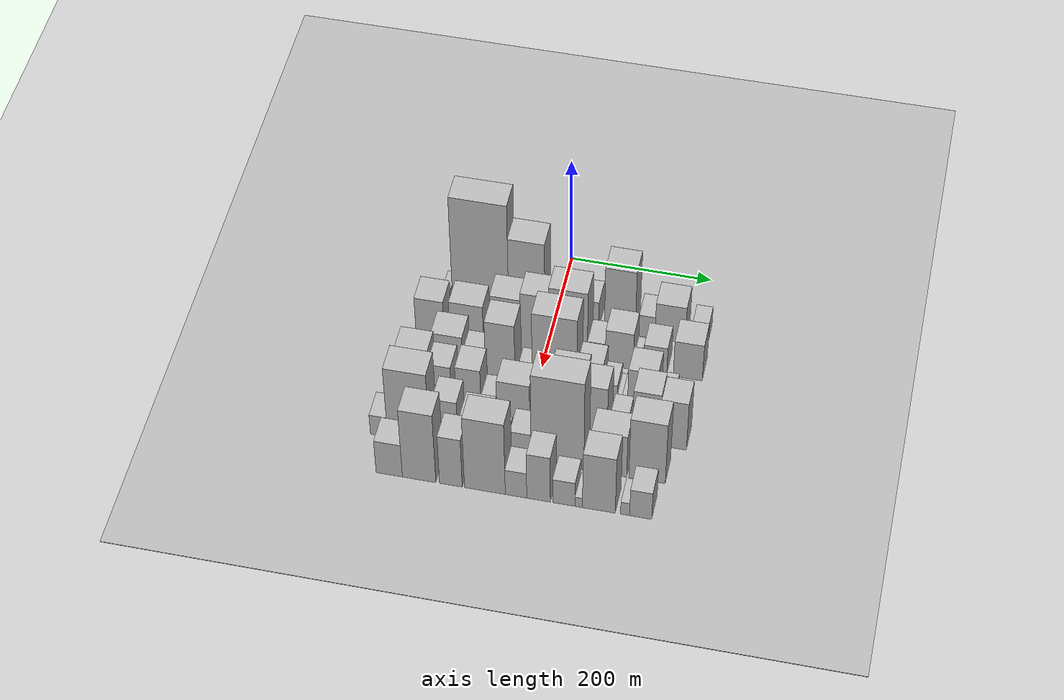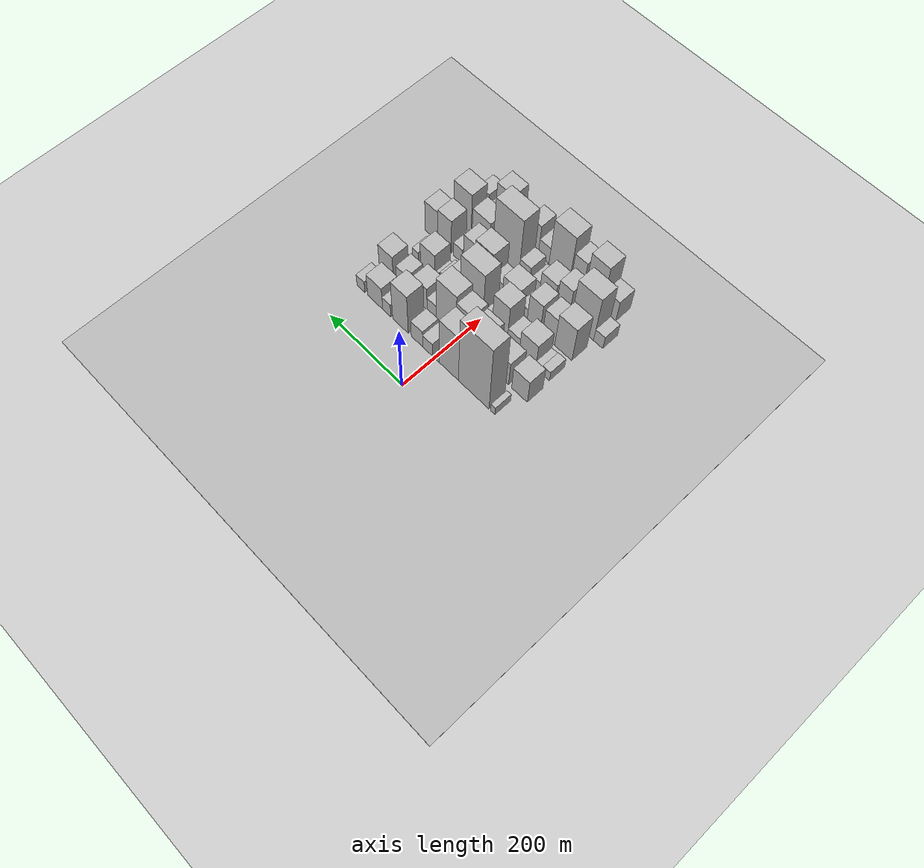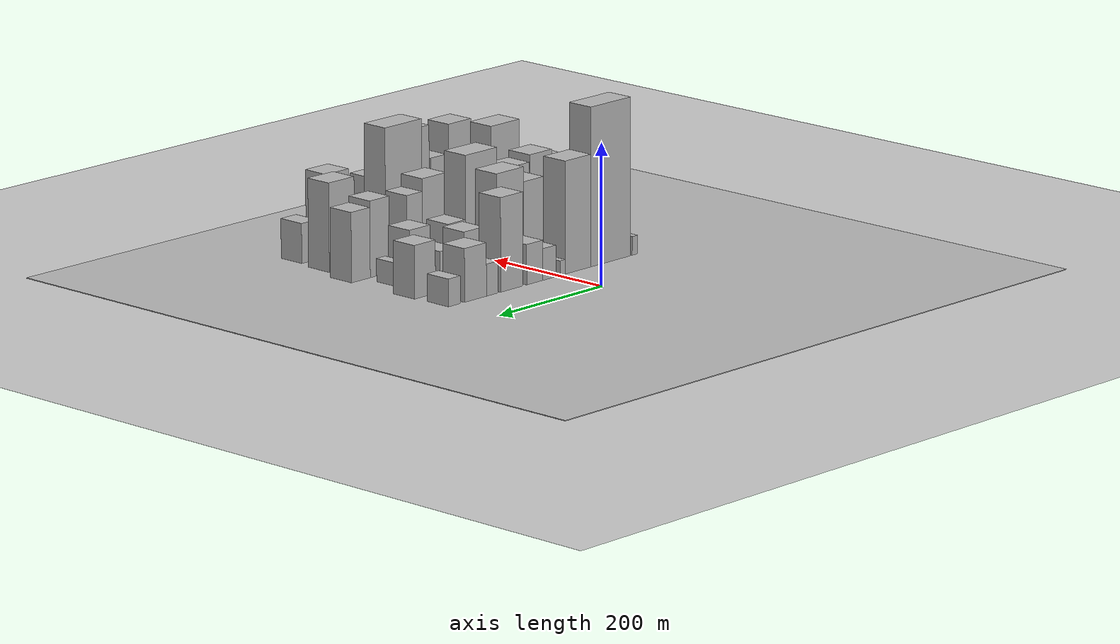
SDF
<sdf version="1.6">
 <world name="default">
  <include><name>ground_plane_1</name><uri>model://HANNAS_ground_plane</uri></include>
  <include>
   <name>ground_plane_2</name>
   <uri>model://HANNAS_ground_plane</uri>
   <pose>100 0 0  0 0 0</pose>
  </include>
  <model name="building_21">
   <static>1</static>
   <pose>100.0000 -153.6914 0 0.000000 0.000000 0.000000</pose>
   <link name="link">
    <pose>0 0 13.50 0 0 0</pose>
    <collision name="collision"><geometry><box><size>40.0000 11.4014 27.0000</size></box></geometry></collision>
    <visual name="visual">
     <cast_shadows>0</cast_shadows>
     <geometry><box><size>40.0000 11.4014 27.0000</size></box></geometry>
     <material>
      <script>
       <uri>model://HANNAS_wall/materials/scripts</uri>
       <uri>model://HANNAS_wall/materials/textures</uri>
       <name>vrc/HANNAS_wall</name>
      </script>
     </material>
    </visual>
   </link>
  </model>
  <model name="building_22">
   <static>1</static>
   <pose>100.0000 -104.1295 0 0.000000 0.000000 0.000000</pose>
   <link name="link">
    <pose>0 0 112.50 0 0 0</pose>
    <collision name="collision"><geometry><box><size>40.0000 79.7223 225.0000</size></box></geometry></collision>
    <visual name="visual">
     <cast_shadows>0</cast_shadows>
     <geometry><box><size>40.0000 79.7223 225.0000</size></box></geometry>
     <material>
      <script>
       <uri>model://HANNAS_wall/materials/scripts</uri>
       <uri>model://HANNAS_wall/materials/textures</uri>
       <name>vrc/HANNAS_wall</name>
      </script>
     </material>
    </visual>
   </link>
  </model>
  <model name="building_23">
   <static>1</static>
   <pose>100.0000 -38.7275 0 0.000000 0.000000 0.000000</pose>
   <link name="link">
    <pose>0 0 79.50 0 0 0</pose>
    <collision name="collision"><geometry><box><size>40.0000 51.0818 159.0000</size></box></geometry></collision>
    <visual name="visual">
     <cast_shadows>0</cast_shadows>
     <geometry><box><size>40.0000 51.0818 159.0000</size></box></geometry>
     <material>
      <script>
       <uri>model://HANNAS_wall/materials/scripts</uri>
       <uri>model://HANNAS_wall/materials/textures</uri>
       <name>vrc/HANNAS_wall</name>
      </script>
     </material>
    </visual>
   </link>
  </model>
  <model name="building_24">
   <static>1</static>
   <pose>100.0000 -8.4285 0 0.000000 0.000000 0.000000</pose>
   <link name="link">
    <pose>0 0 10.50 0 0 0</pose>
    <collision name="collision"><geometry><box><size>40.0000 9.5163 21.0000</size></box></geometry></collision>
    <visual name="visual">
     <cast_shadows>0</cast_shadows>
     <geometry><box><size>40.0000 9.5163 21.0000</size></box></geometry>
     <material>
      <script>
       <uri>model://HANNAS_wall/materials/scripts</uri>
       <uri>model://HANNAS_wall/materials/textures</uri>
       <name>vrc/HANNAS_wall</name>
      </script>
     </material>
    </visual>
   </link>
  </model>
  <model name="building_25">
   <static>1</static>
   <pose>100.0000 18.3383 0 0.000000 0.000000 0.000000</pose>
   <link name="link">
    <pose>0 0 22.50 0 0 0</pose>
    <collision name="collision"><geometry><box><size>40.0000 26.0173 45.0000</size></box></geometry></collision>
    <visual name="visual">
     <cast_shadows>0</cast_shadows>
     <geometry><box><size>40.0000 26.0173 45.0000</size></box></geometry>
     <material>
      <script>
       <uri>model://HANNAS_wall/materials/scripts</uri>
       <uri>model://HANNAS_wall/materials/textures</uri>
       <name>vrc/HANNAS_wall</name>
      </script>
     </material>
    </visual>
   </link>
  </model>
  <model name="building_26">
   <static>1</static>
   <pose>100.0000 47.0992 0 0.000000 0.000000 0.000000</pose>
   <link name="link">
    <pose>0 0 28.50 0 0 0</pose>
    <collision name="collision"><geometry><box><size>40.0000 31.5045 57.0000</size></box></geometry></collision>
    <visual name="visual">
     <cast_shadows>0</cast_shadows>
     <geometry><box><size>40.0000 31.5045 57.0000</size></box></geometry>
     <material>
      <script>
       <uri>model://HANNAS_wall/materials/scripts</uri>
       <uri>model://HANNAS_wall/materials/textures</uri>
       <name>vrc/HANNAS_wall</name>
      </script>
     </material>
    </visual>
   </link>
  </model>
  <model name="building_27">
   <static>1</static>
   <pose>100.0000 92.4159 0 0.000000 0.000000 0.000000</pose>
   <link name="link">
    <pose>0 0 66.00 0 0 0</pose>
    <collision name="collision"><geometry><box><size>40.0000 43.1290 132.0000</size></box></geometry></collision>
    <visual name="visual">
     <cast_shadows>0</cast_shadows>
     <geometry><box><size>40.0000 43.1290 132.0000</size></box></geometry>
     <material>
      <script>
       <uri>model://HANNAS_wall/materials/scripts</uri>
       <uri>model://HANNAS_wall/materials/textures</uri>
       <name>vrc/HANNAS_wall</name>
      </script>
     </material>
    </visual>
   </link>
  </model>
  <model name="building_28">
   <static>1</static>
   <pose>100.0000 130.3424 0 0.000000 0.000000 0.000000</pose>
   <link name="link">
    <pose>0 0 22.50 0 0 0</pose>
    <collision name="collision"><geometry><box><size>40.0000 22.7241 45.0000</size></box></geometry></collision>
    <visual name="visual">
     <cast_shadows>0</cast_shadows>
     <geometry><box><size>40.0000 22.7241 45.0000</size></box></geometry>
     <material>
      <script>
       <uri>model://HANNAS_wall/materials/scripts</uri>
       <uri>model://HANNAS_wall/materials/textures</uri>
       <name>vrc/HANNAS_wall</name>
      </script>
     </material>
    </visual>
   </link>
  </model>
  <model name="building_29">
   <static>1</static>
   <pose>100.0000 162.9192 0 0.000000 0.000000 0.000000</pose>
   <link name="link">
    <pose>0 0 37.50 0 0 0</pose>
    <collision name="collision"><geometry><box><size>40.0000 42.4296 75.0000</size></box></geometry></collision>
    <visual name="visual">
     <cast_shadows>0</cast_shadows>
     <geometry><box><size>40.0000 42.4296 75.0000</size></box></geometry>
     <material>
      <script>
       <uri>model://HANNAS_wall/materials/scripts</uri>
       <uri>model://HANNAS_wall/materials/textures</uri>
       <name>vrc/HANNAS_wall</name>
      </script>
     </material>
    </visual>
   </link>
  </model>
  <model name="building_30">
   <static>1</static>
   <pose>100.0000 203.5021 0 0.000000 0.000000 0.000000</pose>
   <link name="link">
    <pose>0 0 19.50 0 0 0</pose>
    <collision name="collision"><geometry><box><size>40.0000 22.7361 39.0000</size></box></geometry></collision>
    <visual name="visual">
     <cast_shadows>0</cast_shadows>
     <geometry><box><size>40.0000 22.7361 39.0000</size></box></geometry>
     <material>
      <script>
       <uri>model://HANNAS_wall/materials/scripts</uri>
       <uri>model://HANNAS_wall/materials/textures</uri>
       <name>vrc/HANNAS_wall</name>
      </script>
     </material>
    </visual>
   </link>
  </model>
  <model name="building_79">
   <static>1</static>
   <pose>160.0000 -161.7928 0 0.000000 0.000000 0.000000</pose>
   <link name="link">
    <pose>0 0 39.00 0 0 0</pose>
    <collision name="collision"><geometry><box><size>40.0000 40.2958 78.0000</size></box></geometry></collision>
    <visual name="visual">
     <cast_shadows>0</cast_shadows>
     <geometry><box><size>40.0000 40.2958 78.0000</size></box></geometry>
     <material>
      <script>
       <uri>model://HANNAS_wall/materials/scripts</uri>
       <uri>model://HANNAS_wall/materials/textures</uri>
       <name>vrc/HANNAS_wall</name>
      </script>
     </material>
    </visual>
   </link>
  </model>
  <model name="building_80">
   <static>1</static>
   <pose>160.0000 -110.0647 0 0.000000 0.000000 0.000000</pose>
   <link name="link">
    <pose>0 0 40.50 0 0 0</pose>
    <collision name="collision"><geometry><box><size>40.0000 47.1602 81.0000</size></box></geometry></collision>
    <visual name="visual">
     <cast_shadows>0</cast_shadows>
     <geometry><box><size>40.0000 47.1602 81.0000</size></box></geometry>
     <material>
      <script>
       <uri>model://HANNAS_wall/materials/scripts</uri>
       <uri>model://HANNAS_wall/materials/textures</uri>
       <name>vrc/HANNAS_wall</name>
      </script>
     </material>
    </visual>
   </link>
  </model>
  <model name="building_81">
   <static>1</static>
   <pose>160.0000 -55.4200 0 0.000000 0.000000 0.000000</pose>
   <link name="link">
    <pose>0 0 54.00 0 0 0</pose>
    <collision name="collision"><geometry><box><size>40.0000 42.1292 108.0000</size></box></geometry></collision>
    <visual name="visual">
     <cast_shadows>0</cast_shadows>
     <geometry><box><size>40.0000 42.1292 108.0000</size></box></geometry>
     <material>
      <script>
       <uri>model://HANNAS_wall/materials/scripts</uri>
       <uri>model://HANNAS_wall/materials/textures</uri>
       <name>vrc/HANNAS_wall</name>
      </script>
     </material>
    </visual>
   </link>
  </model>
  <model name="building_82">
   <static>1</static>
   <pose>160.0000 -14.7014 0 0.000000 0.000000 0.000000</pose>
   <link name="link">
    <pose>0 0 61.50 0 0 0</pose>
    <collision name="collision"><geometry><box><size>40.0000 39.3080 123.0000</size></box></geometry></collision>
    <visual name="visual">
     <cast_shadows>0</cast_shadows>
     <geometry><box><size>40.0000 39.3080 123.0000</size></box></geometry>
     <material>
      <script>
       <uri>model://HANNAS_wall/materials/scripts</uri>
       <uri>model://HANNAS_wall/materials/textures</uri>
       <name>vrc/HANNAS_wall</name>
      </script>
     </material>
    </visual>
   </link>
  </model>
  <model name="building_83">
   <static>1</static>
   <pose>160.0000 31.8514 0 0.000000 0.000000 0.000000</pose>
   <link name="link">
    <pose>0 0 72.00 0 0 0</pose>
    <collision name="collision"><geometry><box><size>40.0000 53.7976 144.0000</size></box></geometry></collision>
    <visual name="visual">
     <cast_shadows>0</cast_shadows>
     <geometry><box><size>40.0000 53.7976 144.0000</size></box></geometry>
     <material>
      <script>
       <uri>model://HANNAS_wall/materials/scripts</uri>
       <uri>model://HANNAS_wall/materials/textures</uri>
       <name>vrc/HANNAS_wall</name>
      </script>
     </material>
    </visual>
   </link>
  </model>
  <model name="building_84">
   <static>1</static>
   <pose>160.0000 71.2545 0 0.000000 0.000000 0.000000</pose>
   <link name="link">
    <pose>0 0 22.50 0 0 0</pose>
    <collision name="collision"><geometry><box><size>40.0000 25.0087 45.0000</size></box></geometry></collision>
    <visual name="visual">
     <cast_shadows>0</cast_shadows>
     <geometry><box><size>40.0000 25.0087 45.0000</size></box></geometry>
     <material>
      <script>
       <uri>model://HANNAS_wall/materials/scripts</uri>
       <uri>model://HANNAS_wall/materials/textures</uri>
       <name>vrc/HANNAS_wall</name>
      </script>
     </material>
    </visual>
   </link>
  </model>
  <model name="building_85">
   <static>1</static>
   <pose>160.0000 103.1211 0 0.000000 0.000000 0.000000</pose>
   <link name="link">
    <pose>0 0 37.50 0 0 0</pose>
    <collision name="collision"><geometry><box><size>40.0000 38.7245 75.0000</size></box></geometry></collision>
    <visual name="visual">
     <cast_shadows>0</cast_shadows>
     <geometry><box><size>40.0000 38.7245 75.0000</size></box></geometry>
     <material>
      <script>
       <uri>model://HANNAS_wall/materials/scripts</uri>
       <uri>model://HANNAS_wall/materials/textures</uri>
       <name>vrc/HANNAS_wall</name>
      </script>
     </material>
    </visual>
   </link>
  </model>
  <model name="building_86">
   <static>1</static>
   <pose>160.0000 127.6243 0 0.000000 0.000000 0.000000</pose>
   <link name="link">
    <pose>0 0 12.00 0 0 0</pose>
    <collision name="collision"><geometry><box><size>40.0000 10.2819 24.0000</size></box></geometry></collision>
    <visual name="visual">
     <cast_shadows>0</cast_shadows>
     <geometry><box><size>40.0000 10.2819 24.0000</size></box></geometry>
     <material>
      <script>
       <uri>model://HANNAS_wall/materials/scripts</uri>
       <uri>model://HANNAS_wall/materials/textures</uri>
       <name>vrc/HANNAS_wall</name>
      </script>
     </material>
    </visual>
   </link>
  </model>
  <model name="building_87">
   <static>1</static>
   <pose>160.0000 152.9257 0 0.000000 0.000000 0.000000</pose>
   <link name="link">
    <pose>0 0 28.50 0 0 0</pose>
    <collision name="collision"><geometry><box><size>40.0000 32.3210 57.0000</size></box></geometry></collision>
    <visual name="visual">
     <cast_shadows>0</cast_shadows>
     <geometry><box><size>40.0000 32.3210 57.0000</size></box></geometry>
     <material>
      <script>
       <uri>model://HANNAS_wall/materials/scripts</uri>
       <uri>model://HANNAS_wall/materials/textures</uri>
       <name>vrc/HANNAS_wall</name>
      </script>
     </material>
    </visual>
   </link>
  </model>
  <model name="building_88">
   <static>1</static>
   <pose>160.0000 198.1451 0 0.000000 0.000000 0.000000</pose>
   <link name="link">
    <pose>0 0 37.50 0 0 0</pose>
    <collision name="collision"><geometry><box><size>40.0000 40.1176 75.0000</size></box></geometry></collision>
    <visual name="visual">
     <cast_shadows>0</cast_shadows>
     <geometry><box><size>40.0000 40.1176 75.0000</size></box></geometry>
     <material>
      <script>
       <uri>model://HANNAS_wall/materials/scripts</uri>
       <uri>model://HANNAS_wall/materials/textures</uri>
       <name>vrc/HANNAS_wall</name>
      </script>
     </material>
    </visual>
   </link>
  </model>
  <model name="building_136">
   <static>1</static>
   <pose>220.0000 -169.4732 0 0.000000 0.000000 0.000000</pose>
   <link name="link">
    <pose>0 0 16.50 0 0 0</pose>
    <collision name="collision"><geometry><box><size>40.0000 19.2726 33.0000</size></box></geometry></collision>
    <visual name="visual">
     <cast_shadows>0</cast_shadows>
     <geometry><box><size>40.0000 19.2726 33.0000</size></box></geometry>
     <material>
      <script>
       <uri>model://HANNAS_wall/materials/scripts</uri>
       <uri>model://HANNAS_wall/materials/textures</uri>
       <name>vrc/HANNAS_wall</name>
      </script>
     </material>
    </visual>
   </link>
  </model>
  <model name="building_137">
   <static>1</static>
   <pose>220.0000 -151.9447 0 0.000000 0.000000 0.000000</pose>
   <link name="link">
    <pose>0 0 15.00 0 0 0</pose>
    <collision name="collision"><geometry><box><size>40.0000 15.7844 30.0000</size></box></geometry></collision>
    <visual name="visual">
     <cast_shadows>0</cast_shadows>
     <geometry><box><size>40.0000 15.7844 30.0000</size></box></geometry>
     <material>
      <script>
       <uri>model://HANNAS_wall/materials/scripts</uri>
       <uri>model://HANNAS_wall/materials/textures</uri>
       <name>vrc/HANNAS_wall</name>
      </script>
     </material>
    </visual>
   </link>
  </model>
  <model name="building_138">
   <static>1</static>
   <pose>220.0000 -122.6325 0 0.000000 0.000000 0.000000</pose>
   <link name="link">
    <pose>0 0 42.00 0 0 0</pose>
    <collision name="collision"><geometry><box><size>40.0000 42.8398 84.0000</size></box></geometry></collision>
    <visual name="visual">
     <cast_shadows>0</cast_shadows>
     <geometry><box><size>40.0000 42.8398 84.0000</size></box></geometry>
     <material>
      <script>
       <uri>model://HANNAS_wall/materials/scripts</uri>
       <uri>model://HANNAS_wall/materials/textures</uri>
       <name>vrc/HANNAS_wall</name>
      </script>
     </material>
    </visual>
   </link>
  </model>
  <model name="building_139">
   <static>1</static>
   <pose>220.0000 -85.4542 0 0.000000 0.000000 0.000000</pose>
   <link name="link">
    <pose>0 0 27.00 0 0 0</pose>
    <collision name="collision"><geometry><box><size>40.0000 31.5167 54.0000</size></box></geometry></collision>
    <visual name="visual">
     <cast_shadows>0</cast_shadows>
     <geometry><box><size>40.0000 31.5167 54.0000</size></box></geometry>
     <material>
      <script>
       <uri>model://HANNAS_wall/materials/scripts</uri>
       <uri>model://HANNAS_wall/materials/textures</uri>
       <name>vrc/HANNAS_wall</name>
      </script>
     </material>
    </visual>
   </link>
  </model>
  <model name="building_140">
   <static>1</static>
   <pose>220.0000 -49.3287 0 0.000000 0.000000 0.000000</pose>
   <link name="link">
    <pose>0 0 63.00 0 0 0</pose>
    <collision name="collision"><geometry><box><size>40.0000 40.7344 126.0000</size></box></geometry></collision>
    <visual name="visual">
     <cast_shadows>0</cast_shadows>
     <geometry><box><size>40.0000 40.7344 126.0000</size></box></geometry>
     <material>
      <script>
       <uri>model://HANNAS_wall/materials/scripts</uri>
       <uri>model://HANNAS_wall/materials/textures</uri>
       <name>vrc/HANNAS_wall</name>
      </script>
     </material>
    </visual>
   </link>
  </model>
  <model name="building_141">
   <static>1</static>
   <pose>220.0000 -15.6013 0 0.000000 0.000000 0.000000</pose>
   <link name="link">
    <pose>0 0 18.00 0 0 0</pose>
    <collision name="collision"><geometry><box><size>40.0000 20.7205 36.0000</size></box></geometry></collision>
    <visual name="visual">
     <cast_shadows>0</cast_shadows>
     <geometry><box><size>40.0000 20.7205 36.0000</size></box></geometry>
     <material>
      <script>
       <uri>model://HANNAS_wall/materials/scripts</uri>
       <uri>model://HANNAS_wall/materials/textures</uri>
       <name>vrc/HANNAS_wall</name>
      </script>
     </material>
    </visual>
   </link>
  </model>
  <model name="building_142">
   <static>1</static>
   <pose>220.0000 25.6760 0 0.000000 0.000000 0.000000</pose>
   <link name="link">
    <pose>0 0 79.50 0 0 0</pose>
    <collision name="collision"><geometry><box><size>40.0000 61.8340 159.0000</size></box></geometry></collision>
    <visual name="visual">
     <cast_shadows>0</cast_shadows>
     <geometry><box><size>40.0000 61.8340 159.0000</size></box></geometry>
     <material>
      <script>
       <uri>model://HANNAS_wall/materials/scripts</uri>
       <uri>model://HANNAS_wall/materials/textures</uri>
       <name>vrc/HANNAS_wall</name>
      </script>
     </material>
    </visual>
   </link>
  </model>
  <model name="building_143">
   <static>1</static>
   <pose>220.0000 74.0322 0 0.000000 0.000000 0.000000</pose>
   <link name="link">
    <pose>0 0 34.50 0 0 0</pose>
    <collision name="collision"><geometry><box><size>40.0000 34.8783 69.0000</size></box></geometry></collision>
    <visual name="visual">
     <cast_shadows>0</cast_shadows>
     <geometry><box><size>40.0000 34.8783 69.0000</size></box></geometry>
     <material>
      <script>
       <uri>model://HANNAS_wall/materials/scripts</uri>
       <uri>model://HANNAS_wall/materials/textures</uri>
       <name>vrc/HANNAS_wall</name>
      </script>
     </material>
    </visual>
   </link>
  </model>
  <model name="building_144">
   <static>1</static>
   <pose>220.0000 101.6621 0 0.000000 0.000000 0.000000</pose>
   <link name="link">
    <pose>0 0 18.00 0 0 0</pose>
    <collision name="collision"><geometry><box><size>40.0000 20.3816 36.0000</size></box></geometry></collision>
    <visual name="visual">
     <cast_shadows>0</cast_shadows>
     <geometry><box><size>40.0000 20.3816 36.0000</size></box></geometry>
     <material>
      <script>
       <uri>model://HANNAS_wall/materials/scripts</uri>
       <uri>model://HANNAS_wall/materials/textures</uri>
       <name>vrc/HANNAS_wall</name>
      </script>
     </material>
    </visual>
   </link>
  </model>
  <model name="building_145">
   <static>1</static>
   <pose>220.0000 115.4025 0 0.000000 0.000000 0.000000</pose>
   <link name="link">
    <pose>0 0 7.50 0 0 0</pose>
    <collision name="collision"><geometry><box><size>40.0000 7.0992 15.0000</size></box></geometry></collision>
    <visual name="visual">
     <cast_shadows>0</cast_shadows>
     <geometry><box><size>40.0000 7.0992 15.0000</size></box></geometry>
     <material>
      <script>
       <uri>model://HANNAS_wall/materials/scripts</uri>
       <uri>model://HANNAS_wall/materials/textures</uri>
       <name>vrc/HANNAS_wall</name>
      </script>
     </material>
    </visual>
   </link>
  </model>
  <model name="building_146">
   <static>1</static>
   <pose>220.0000 122.6395 0 0.000000 0.000000 0.000000</pose>
   <link name="link">
    <pose>0 0 9.00 0 0 0</pose>
    <collision name="collision"><geometry><box><size>40.0000 7.3749 18.0000</size></box></geometry></collision>
    <visual name="visual">
     <cast_shadows>0</cast_shadows>
     <geometry><box><size>40.0000 7.3749 18.0000</size></box></geometry>
     <material>
      <script>
       <uri>model://HANNAS_wall/materials/scripts</uri>
       <uri>model://HANNAS_wall/materials/textures</uri>
       <name>vrc/HANNAS_wall</name>
      </script>
     </material>
    </visual>
   </link>
  </model>
  <model name="building_147">
   <static>1</static>
   <pose>220.0000 146.3898 0 0.000000 0.000000 0.000000</pose>
   <link name="link">
    <pose>0 0 37.50 0 0 0</pose>
    <collision name="collision"><geometry><box><size>40.0000 40.1257 75.0000</size></box></geometry></collision>
    <visual name="visual">
     <cast_shadows>0</cast_shadows>
     <geometry><box><size>40.0000 40.1257 75.0000</size></box></geometry>
     <material>
      <script>
       <uri>model://HANNAS_wall/materials/scripts</uri>
       <uri>model://HANNAS_wall/materials/textures</uri>
       <name>vrc/HANNAS_wall</name>
      </script>
     </material>
    </visual>
   </link>
  </model>
  <model name="building_148">
   <static>1</static>
   <pose>220.0000 180.8749 0 0.000000 0.000000 0.000000</pose>
   <link name="link">
    <pose>0 0 16.50 0 0 0</pose>
    <collision name="collision"><geometry><box><size>40.0000 16.8444 33.0000</size></box></geometry></collision>
    <visual name="visual">
     <cast_shadows>0</cast_shadows>
     <geometry><box><size>40.0000 16.8444 33.0000</size></box></geometry>
     <material>
      <script>
       <uri>model://HANNAS_wall/materials/scripts</uri>
       <uri>model://HANNAS_wall/materials/textures</uri>
       <name>vrc/HANNAS_wall</name>
      </script>
     </material>
    </visual>
   </link>
  </model>
  <model name="building_188">
   <static>1</static>
   <pose>280.0000 -156.3448 0 0.000000 0.000000 0.000000</pose>
   <link name="link">
    <pose>0 0 57.00 0 0 0</pose>
    <collision name="collision"><geometry><box><size>40.0000 44.1439 114.0000</size></box></geometry></collision>
    <visual name="visual">
     <cast_shadows>0</cast_shadows>
     <geometry><box><size>40.0000 44.1439 114.0000</size></box></geometry>
     <material>
      <script>
       <uri>model://HANNAS_wall/materials/scripts</uri>
       <uri>model://HANNAS_wall/materials/textures</uri>
       <name>vrc/HANNAS_wall</name>
      </script>
     </material>
    </visual>
   </link>
  </model>
  <model name="building_189">
   <static>1</static>
   <pose>280.0000 -118.4212 0 0.000000 0.000000 0.000000</pose>
   <link name="link">
    <pose>0 0 46.50 0 0 0</pose>
    <collision name="collision"><geometry><box><size>40.0000 31.7032 93.0000</size></box></geometry></collision>
    <visual name="visual">
     <cast_shadows>0</cast_shadows>
     <geometry><box><size>40.0000 31.7032 93.0000</size></box></geometry>
     <material>
      <script>
       <uri>model://HANNAS_wall/materials/scripts</uri>
       <uri>model://HANNAS_wall/materials/textures</uri>
       <name>vrc/HANNAS_wall</name>
      </script>
     </material>
    </visual>
   </link>
  </model>
  <model name="building_190">
   <static>1</static>
   <pose>280.0000 -99.5163 0 0.000000 0.000000 0.000000</pose>
   <link name="link">
    <pose>0 0 7.50 0 0 0</pose>
    <collision name="collision"><geometry><box><size>40.0000 6.1066 15.0000</size></box></geometry></collision>
    <visual name="visual">
     <cast_shadows>0</cast_shadows>
     <geometry><box><size>40.0000 6.1066 15.0000</size></box></geometry>
     <material>
      <script>
       <uri>model://HANNAS_wall/materials/scripts</uri>
       <uri>model://HANNAS_wall/materials/textures</uri>
       <name>vrc/HANNAS_wall</name>
      </script>
     </material>
    </visual>
   </link>
  </model>
  <model name="building_191">
   <static>1</static>
   <pose>280.0000 -79.3899 0 0.000000 0.000000 0.000000</pose>
   <link name="link">
    <pose>0 0 48.00 0 0 0</pose>
    <collision name="collision"><geometry><box><size>40.0000 34.1463 96.0000</size></box></geometry></collision>
    <visual name="visual">
     <cast_shadows>0</cast_shadows>
     <geometry><box><size>40.0000 34.1463 96.0000</size></box></geometry>
     <material>
      <script>
       <uri>model://HANNAS_wall/materials/scripts</uri>
       <uri>model://HANNAS_wall/materials/textures</uri>
       <name>vrc/HANNAS_wall</name>
      </script>
     </material>
    </visual>
   </link>
  </model>
  <model name="building_192">
   <static>1</static>
   <pose>280.0000 -51.5282 0 0.000000 0.000000 0.000000</pose>
   <link name="link">
    <pose>0 0 21.00 0 0 0</pose>
    <collision name="collision"><geometry><box><size>40.0000 21.5771 42.0000</size></box></geometry></collision>
    <visual name="visual">
     <cast_shadows>0</cast_shadows>
     <geometry><box><size>40.0000 21.5771 42.0000</size></box></geometry>
     <material>
      <script>
       <uri>model://HANNAS_wall/materials/scripts</uri>
       <uri>model://HANNAS_wall/materials/textures</uri>
       <name>vrc/HANNAS_wall</name>
      </script>
     </material>
    </visual>
   </link>
  </model>
  <model name="building_193">
   <static>1</static>
   <pose>280.0000 -18.2314 0 0.000000 0.000000 0.000000</pose>
   <link name="link">
    <pose>0 0 40.50 0 0 0</pose>
    <collision name="collision"><geometry><box><size>40.0000 45.0166 81.0000</size></box></geometry></collision>
    <visual name="visual">
     <cast_shadows>0</cast_shadows>
     <geometry><box><size>40.0000 45.0166 81.0000</size></box></geometry>
     <material>
      <script>
       <uri>model://HANNAS_wall/materials/scripts</uri>
       <uri>model://HANNAS_wall/materials/textures</uri>
       <name>vrc/HANNAS_wall</name>
      </script>
     </material>
    </visual>
   </link>
  </model>
  <model name="building_194">
   <static>1</static>
   <pose>280.0000 18.2433 0 0.000000 0.000000 0.000000</pose>
   <link name="link">
    <pose>0 0 25.50 0 0 0</pose>
    <collision name="collision"><geometry><box><size>40.0000 27.9328 51.0000</size></box></geometry></collision>
    <visual name="visual">
     <cast_shadows>0</cast_shadows>
     <geometry><box><size>40.0000 27.9328 51.0000</size></box></geometry>
     <material>
      <script>
       <uri>model://HANNAS_wall/materials/scripts</uri>
       <uri>model://HANNAS_wall/materials/textures</uri>
       <name>vrc/HANNAS_wall</name>
      </script>
     </material>
    </visual>
   </link>
  </model>
  <model name="building_195">
   <static>1</static>
   <pose>280.0000 55.7903 0 0.000000 0.000000 0.000000</pose>
   <link name="link">
    <pose>0 0 60.00 0 0 0</pose>
    <collision name="collision"><geometry><box><size>40.0000 47.1613 120.0000</size></box></geometry></collision>
    <visual name="visual">
     <cast_shadows>0</cast_shadows>
     <geometry><box><size>40.0000 47.1613 120.0000</size></box></geometry>
     <material>
      <script>
       <uri>model://HANNAS_wall/materials/scripts</uri>
       <uri>model://HANNAS_wall/materials/textures</uri>
       <name>vrc/HANNAS_wall</name>
      </script>
     </material>
    </visual>
   </link>
  </model>
  <model name="building_196">
   <static>1</static>
   <pose>280.0000 94.6993 0 0.000000 0.000000 0.000000</pose>
   <link name="link">
    <pose>0 0 51.00 0 0 0</pose>
    <collision name="collision"><geometry><box><size>40.0000 30.6566 102.0000</size></box></geometry></collision>
    <visual name="visual">
     <cast_shadows>0</cast_shadows>
     <geometry><box><size>40.0000 30.6566 102.0000</size></box></geometry>
     <material>
      <script>
       <uri>model://HANNAS_wall/materials/scripts</uri>
       <uri>model://HANNAS_wall/materials/textures</uri>
       <name>vrc/HANNAS_wall</name>
      </script>
     </material>
    </visual>
   </link>
  </model>
  <model name="building_197">
   <static>1</static>
   <pose>280.0000 125.4680 0 0.000000 0.000000 0.000000</pose>
   <link name="link">
    <pose>0 0 22.50 0 0 0</pose>
    <collision name="collision"><geometry><box><size>40.0000 24.8808 45.0000</size></box></geometry></collision>
    <visual name="visual">
     <cast_shadows>0</cast_shadows>
     <geometry><box><size>40.0000 24.8808 45.0000</size></box></geometry>
     <material>
      <script>
       <uri>model://HANNAS_wall/materials/scripts</uri>
       <uri>model://HANNAS_wall/materials/textures</uri>
       <name>vrc/HANNAS_wall</name>
      </script>
     </material>
    </visual>
   </link>
  </model>
  <model name="building_198">
   <static>1</static>
   <pose>280.0000 162.5862 0 0.000000 0.000000 0.000000</pose>
   <link name="link">
    <pose>0 0 54.00 0 0 0</pose>
    <collision name="collision"><geometry><box><size>40.0000 37.3557 108.0000</size></box></geometry></collision>
    <visual name="visual">
     <cast_shadows>0</cast_shadows>
     <geometry><box><size>40.0000 37.3557 108.0000</size></box></geometry>
     <material>
      <script>
       <uri>model://HANNAS_wall/materials/scripts</uri>
       <uri>model://HANNAS_wall/materials/textures</uri>
       <name>vrc/HANNAS_wall</name>
      </script>
     </material>
    </visual>
   </link>
  </model>
  <model name="building_199">
   <static>1</static>
   <pose>280.0000 199.3553 0 0.000000 0.000000 0.000000</pose>
   <link name="link">
    <pose>0 0 49.50 0 0 0</pose>
    <collision name="collision"><geometry><box><size>40.0000 36.1824 99.0000</size></box></geometry></collision>
    <visual name="visual">
     <cast_shadows>0</cast_shadows>
     <geometry><box><size>40.0000 36.1824 99.0000</size></box></geometry>
     <material>
      <script>
       <uri>model://HANNAS_wall/materials/scripts</uri>
       <uri>model://HANNAS_wall/materials/textures</uri>
       <name>vrc/HANNAS_wall</name>
      </script>
     </material>
    </visual>
   </link>
  </model>
  <model name="building_250">
   <static>1</static>
   <pose>340.0000 -188.6340 0 0.000000 0.000000 0.000000</pose>
   <link name="link">
    <pose>0 0 21.00 0 0 0</pose>
    <collision name="collision"><geometry><box><size>40.0000 23.7086 42.0000</size></box></geometry></collision>
    <visual name="visual">
     <cast_shadows>0</cast_shadows>
     <geometry><box><size>40.0000 23.7086 42.0000</size></box></geometry>
     <material>
      <script>
       <uri>model://HANNAS_wall/materials/scripts</uri>
       <uri>model://HANNAS_wall/materials/textures</uri>
       <name>vrc/HANNAS_wall</name>
      </script>
     </material>
    </visual>
   </link>
  </model>
  <model name="building_251">
   <static>1</static>
   <pose>340.0000 -148.0539 0 0.000000 0.000000 0.000000</pose>
   <link name="link">
    <pose>0 0 73.50 0 0 0</pose>
    <collision name="collision"><geometry><box><size>40.0000 57.4516 147.0000</size></box></geometry></collision>
    <visual name="visual">
     <cast_shadows>0</cast_shadows>
     <geometry><box><size>40.0000 57.4516 147.0000</size></box></geometry>
     <material>
      <script>
       <uri>model://HANNAS_wall/materials/scripts</uri>
       <uri>model://HANNAS_wall/materials/textures</uri>
       <name>vrc/HANNAS_wall</name>
      </script>
     </material>
    </visual>
   </link>
  </model>
  <model name="building_252">
   <static>1</static>
   <pose>340.0000 -116.1346 0 0.000000 0.000000 0.000000</pose>
   <link name="link">
    <pose>0 0 7.50 0 0 0</pose>
    <collision name="collision"><geometry><box><size>40.0000 6.3870 15.0000</size></box></geometry></collision>
    <visual name="visual">
     <cast_shadows>0</cast_shadows>
     <geometry><box><size>40.0000 6.3870 15.0000</size></box></geometry>
     <material>
      <script>
       <uri>model://HANNAS_wall/materials/scripts</uri>
       <uri>model://HANNAS_wall/materials/textures</uri>
       <name>vrc/HANNAS_wall</name>
      </script>
     </material>
    </visual>
   </link>
  </model>
  <model name="building_253">
   <static>1</static>
   <pose>340.0000 -96.4524 0 0.000000 0.000000 0.000000</pose>
   <link name="link">
    <pose>0 0 49.50 0 0 0</pose>
    <collision name="collision"><geometry><box><size>40.0000 32.9773 99.0000</size></box></geometry></collision>
    <visual name="visual">
     <cast_shadows>0</cast_shadows>
     <geometry><box><size>40.0000 32.9773 99.0000</size></box></geometry>
     <material>
      <script>
       <uri>model://HANNAS_wall/materials/scripts</uri>
       <uri>model://HANNAS_wall/materials/textures</uri>
       <name>vrc/HANNAS_wall</name>
      </script>
     </material>
    </visual>
   </link>
  </model>
  <model name="building_254">
   <static>1</static>
   <pose>340.0000 -55.8753 0 0.000000 0.000000 0.000000</pose>
   <link name="link">
    <pose>0 0 37.50 0 0 0</pose>
    <collision name="collision"><geometry><box><size>40.0000 40.1769 75.0000</size></box></geometry></collision>
    <visual name="visual">
     <cast_shadows>0</cast_shadows>
     <geometry><box><size>40.0000 40.1769 75.0000</size></box></geometry>
     <material>
      <script>
       <uri>model://HANNAS_wall/materials/scripts</uri>
       <uri>model://HANNAS_wall/materials/textures</uri>
       <name>vrc/HANNAS_wall</name>
      </script>
     </material>
    </visual>
   </link>
  </model>
  <model name="building_255">
   <static>1</static>
   <pose>340.0000 -25.0910 0 0.000000 0.000000 0.000000</pose>
   <link name="link">
    <pose>0 0 18.00 0 0 0</pose>
    <collision name="collision"><geometry><box><size>40.0000 21.3918 36.0000</size></box></geometry></collision>
    <visual name="visual">
     <cast_shadows>0</cast_shadows>
     <geometry><box><size>40.0000 21.3918 36.0000</size></box></geometry>
     <material>
      <script>
       <uri>model://HANNAS_wall/materials/scripts</uri>
       <uri>model://HANNAS_wall/materials/textures</uri>
       <name>vrc/HANNAS_wall</name>
      </script>
     </material>
    </visual>
   </link>
  </model>
  <model name="building_256">
   <static>1</static>
   <pose>340.0000 4.9002 0 0.000000 0.000000 0.000000</pose>
   <link name="link">
    <pose>0 0 28.50 0 0 0</pose>
    <collision name="collision"><geometry><box><size>40.0000 28.5906 57.0000</size></box></geometry></collision>
    <visual name="visual">
     <cast_shadows>0</cast_shadows>
     <geometry><box><size>40.0000 28.5906 57.0000</size></box></geometry>
     <material>
      <script>
       <uri>model://HANNAS_wall/materials/scripts</uri>
       <uri>model://HANNAS_wall/materials/textures</uri>
       <name>vrc/HANNAS_wall</name>
      </script>
     </material>
    </visual>
   </link>
  </model>
  <model name="building_257">
   <static>1</static>
   <pose>340.0000 54.7826 0 0.000000 0.000000 0.000000</pose>
   <link name="link">
    <pose>0 0 91.50 0 0 0</pose>
    <collision name="collision"><geometry><box><size>40.0000 71.1743 183.0000</size></box></geometry></collision>
    <visual name="visual">
     <cast_shadows>0</cast_shadows>
     <geometry><box><size>40.0000 71.1743 183.0000</size></box></geometry>
     <material>
      <script>
       <uri>model://HANNAS_wall/materials/scripts</uri>
       <uri>model://HANNAS_wall/materials/textures</uri>
       <name>vrc/HANNAS_wall</name>
      </script>
     </material>
    </visual>
   </link>
  </model>
  <model name="building_258">
   <static>1</static>
   <pose>340.0000 123.6533 0 0.000000 0.000000 0.000000</pose>
   <link name="link">
    <pose>0 0 43.50 0 0 0</pose>
    <collision name="collision"><geometry><box><size>40.0000 48.5670 87.0000</size></box></geometry></collision>
    <visual name="visual">
     <cast_shadows>0</cast_shadows>
     <geometry><box><size>40.0000 48.5670 87.0000</size></box></geometry>
     <material>
      <script>
       <uri>model://HANNAS_wall/materials/scripts</uri>
       <uri>model://HANNAS_wall/materials/textures</uri>
       <name>vrc/HANNAS_wall</name>
      </script>
     </material>
    </visual>
   </link>
  </model>
  <model name="building_259">
   <static>1</static>
   <pose>340.0000 175.3327 0 0.000000 0.000000 0.000000</pose>
   <link name="link">
    <pose>0 0 63.00 0 0 0</pose>
    <collision name="collision"><geometry><box><size>40.0000 48.7920 126.0000</size></box></geometry></collision>
    <visual name="visual">
     <cast_shadows>0</cast_shadows>
     <geometry><box><size>40.0000 48.7920 126.0000</size></box></geometry>
     <material>
      <script>
       <uri>model://HANNAS_wall/materials/scripts</uri>
       <uri>model://HANNAS_wall/materials/textures</uri>
       <name>vrc/HANNAS_wall</name>
      </script>
     </material>
    </visual>
   </link>
  </model>
  <model name="building_302">
   <static>1</static>
   <pose>400.0000 -159.4942 0 0.000000 0.000000 0.000000</pose>
   <link name="link">
    <pose>0 0 34.50 0 0 0</pose>
    <collision name="collision"><geometry><box><size>40.0000 35.7050 69.0000</size></box></geometry></collision>
    <visual name="visual">
     <cast_shadows>0</cast_shadows>
     <geometry><box><size>40.0000 35.7050 69.0000</size></box></geometry>
     <material>
      <script>
       <uri>model://HANNAS_wall/materials/scripts</uri>
       <uri>model://HANNAS_wall/materials/textures</uri>
       <name>vrc/HANNAS_wall</name>
      </script>
     </material>
    </visual>
   </link>
  </model>
  <model name="building_303">
   <static>1</static>
   <pose>400.0000 -118.9883 0 0.000000 0.000000 0.000000</pose>
   <link name="link">
    <pose>0 0 72.00 0 0 0</pose>
    <collision name="collision"><geometry><box><size>40.0000 45.3067 144.0000</size></box></geometry></collision>
    <visual name="visual">
     <cast_shadows>0</cast_shadows>
     <geometry><box><size>40.0000 45.3067 144.0000</size></box></geometry>
     <material>
      <script>
       <uri>model://HANNAS_wall/materials/scripts</uri>
       <uri>model://HANNAS_wall/materials/textures</uri>
       <name>vrc/HANNAS_wall</name>
      </script>
     </material>
    </visual>
   </link>
  </model>
  <model name="building_304">
   <static>1</static>
   <pose>400.0000 -75.9681 0 0.000000 0.000000 0.000000</pose>
   <link name="link">
    <pose>0 0 51.00 0 0 0</pose>
    <collision name="collision"><geometry><box><size>40.0000 30.7338 102.0000</size></box></geometry></collision>
    <visual name="visual">
     <cast_shadows>0</cast_shadows>
     <geometry><box><size>40.0000 30.7338 102.0000</size></box></geometry>
     <material>
      <script>
       <uri>model://HANNAS_wall/materials/scripts</uri>
       <uri>model://HANNAS_wall/materials/textures</uri>
       <name>vrc/HANNAS_wall</name>
      </script>
     </material>
    </visual>
   </link>
  </model>
  <model name="building_305">
   <static>1</static>
   <pose>400.0000 -30.1405 0 0.000000 0.000000 0.000000</pose>
   <link name="link">
    <pose>0 0 75.00 0 0 0</pose>
    <collision name="collision"><geometry><box><size>40.0000 54.9215 150.0000</size></box></geometry></collision>
    <visual name="visual">
     <cast_shadows>0</cast_shadows>
     <geometry><box><size>40.0000 54.9215 150.0000</size></box></geometry>
     <material>
      <script>
       <uri>model://HANNAS_wall/materials/scripts</uri>
       <uri>model://HANNAS_wall/materials/textures</uri>
       <name>vrc/HANNAS_wall</name>
      </script>
     </material>
    </visual>
   </link>
  </model>
  <model name="building_306">
   <static>1</static>
   <pose>400.0000 11.7377 0 0.000000 0.000000 0.000000</pose>
   <link name="link">
    <pose>0 0 27.00 0 0 0</pose>
    <collision name="collision"><geometry><box><size>40.0000 28.8350 54.0000</size></box></geometry></collision>
    <visual name="visual">
     <cast_shadows>0</cast_shadows>
     <geometry><box><size>40.0000 28.8350 54.0000</size></box></geometry>
     <material>
      <script>
       <uri>model://HANNAS_wall/materials/scripts</uri>
       <uri>model://HANNAS_wall/materials/textures</uri>
       <name>vrc/HANNAS_wall</name>
      </script>
     </material>
    </visual>
   </link>
  </model>
  <model name="building_307">
   <static>1</static>
   <pose>400.0000 41.9478 0 0.000000 0.000000 0.000000</pose>
   <link name="link">
    <pose>0 0 48.00 0 0 0</pose>
    <collision name="collision"><geometry><box><size>40.0000 31.5852 96.0000</size></box></geometry></collision>
    <visual name="visual">
     <cast_shadows>0</cast_shadows>
     <geometry><box><size>40.0000 31.5852 96.0000</size></box></geometry>
     <material>
      <script>
       <uri>model://HANNAS_wall/materials/scripts</uri>
       <uri>model://HANNAS_wall/materials/textures</uri>
       <name>vrc/HANNAS_wall</name>
      </script>
     </material>
    </visual>
   </link>
  </model>
  <model name="building_308">
   <static>1</static>
   <pose>400.0000 75.7400 0 0.000000 0.000000 0.000000</pose>
   <link name="link">
    <pose>0 0 25.50 0 0 0</pose>
    <collision name="collision"><geometry><box><size>40.0000 29.9993 51.0000</size></box></geometry></collision>
    <visual name="visual">
     <cast_shadows>0</cast_shadows>
     <geometry><box><size>40.0000 29.9993 51.0000</size></box></geometry>
     <material>
      <script>
       <uri>model://HANNAS_wall/materials/scripts</uri>
       <uri>model://HANNAS_wall/materials/textures</uri>
       <name>vrc/HANNAS_wall</name>
      </script>
     </material>
    </visual>
   </link>
  </model>
  <model name="building_309">
   <static>1</static>
   <pose>400.0000 95.6893 0 0.000000 0.000000 0.000000</pose>
   <link name="link">
    <pose>0 0 10.50 0 0 0</pose>
    <collision name="collision"><geometry><box><size>40.0000 9.8992 21.0000</size></box></geometry></collision>
    <visual name="visual">
     <cast_shadows>0</cast_shadows>
     <geometry><box><size>40.0000 9.8992 21.0000</size></box></geometry>
     <material>
      <script>
       <uri>model://HANNAS_wall/materials/scripts</uri>
       <uri>model://HANNAS_wall/materials/textures</uri>
       <name>vrc/HANNAS_wall</name>
      </script>
     </material>
    </visual>
   </link>
  </model>
  <model name="building_310">
   <static>1</static>
   <pose>400.0000 122.5218 0 0.000000 0.000000 0.000000</pose>
   <link name="link">
    <pose>0 0 58.50 0 0 0</pose>
    <collision name="collision"><geometry><box><size>40.0000 43.7657 117.0000</size></box></geometry></collision>
    <visual name="visual">
     <cast_shadows>0</cast_shadows>
     <geometry><box><size>40.0000 43.7657 117.0000</size></box></geometry>
     <material>
      <script>
       <uri>model://HANNAS_wall/materials/scripts</uri>
       <uri>model://HANNAS_wall/materials/textures</uri>
       <name>vrc/HANNAS_wall</name>
      </script>
     </material>
    </visual>
   </link>
  </model>
  <model name="building_311">
   <static>1</static>
   <pose>400.0000 157.3936 0 0.000000 0.000000 0.000000</pose>
   <link name="link">
    <pose>0 0 13.50 0 0 0</pose>
    <collision name="collision"><geometry><box><size>40.0000 11.9780 27.0000</size></box></geometry></collision>
    <visual name="visual">
     <cast_shadows>0</cast_shadows>
     <geometry><box><size>40.0000 11.9780 27.0000</size></box></geometry>
     <material>
      <script>
       <uri>model://HANNAS_wall/materials/scripts</uri>
       <uri>model://HANNAS_wall/materials/textures</uri>
       <name>vrc/HANNAS_wall</name>
      </script>
     </material>
    </visual>
   </link>
  </model>
  <model name="building_312">
   <static>1</static>
   <pose>400.0000 178.0749 0 0.000000 0.000000 0.000000</pose>
   <link name="link">
    <pose>0 0 28.50 0 0 0</pose>
    <collision name="collision"><geometry><box><size>40.0000 29.3846 57.0000</size></box></geometry></collision>
    <visual name="visual">
     <cast_shadows>0</cast_shadows>
     <geometry><box><size>40.0000 29.3846 57.0000</size></box></geometry>
     <material>
      <script>
       <uri>model://HANNAS_wall/materials/scripts</uri>
       <uri>model://HANNAS_wall/materials/textures</uri>
       <name>vrc/HANNAS_wall</name>
      </script>
     </material>
    </visual>
   </link>
  </model>
 </world>
</sdf>
